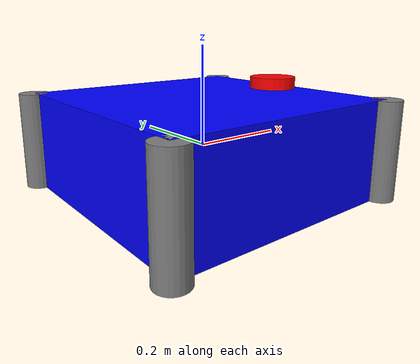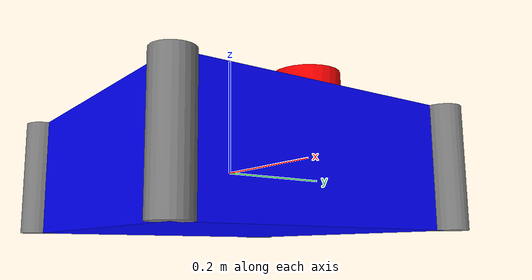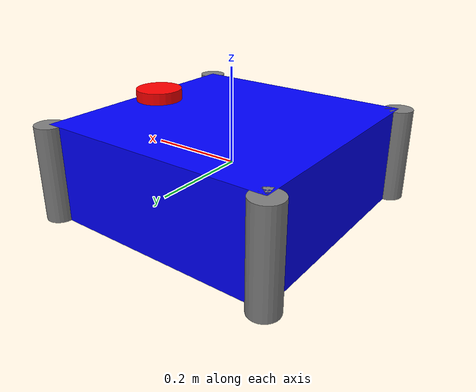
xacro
<?xml version="1.0"?>
<robot xmlns:xacro="http://www.ros.org/wiki/xacro" name="x500_lidar_2d">

  <!-- UAV BODY -->
  <link name="base_link">
    <visual>
      <geometry>
        <box size="0.5 0.5 0.2"/> <!-- UAV body box -->
      </geometry>
      <material name="blue">
        <color rgba="0 0 1 1"/>
      </material>
    </visual>
    <collision>
      <geometry>
        <box size="0.5 0.5 0.2"/>
      </geometry>
    </collision>
    <inertial>
      <mass value="1.0"/>
      <inertia ixx="0.02" ixy="0" ixz="0" iyy="0.02" iyz="0" izz="0.02"/>
      <origin xyz="0 0 0" rpy="0 0 0"/>
    </inertial>
  </link>

  <!-- LiDAR SENSOR -->
  <link name="lidar_link">
    <visual>
      <geometry>
        <cylinder radius="0.05" length="0.05"/>
      </geometry>
      <material name="red">
        <color rgba="1 0 0 1"/>
      </material>
    </visual>
    <collision>
      <geometry>
        <cylinder radius="0.05" length="0.05"/>
      </geometry>
    </collision>
  </link>

  <joint name="lidar_joint" type="fixed">
    <parent link="base_link"/>
    <child link="lidar_link"/>
    <!-- LiDAR mounted slightly forward and up -->
    <origin xyz="0.2 0 0.1" rpy="0 0 0"/>
  </joint>

  <!-- OPTIONAL: arms/propellers -->
  <link name="arm_front_left">
    <visual>
      <geometry>
        <cylinder radius="0.03" length="0.2"/>
      </geometry>
      <material name="gray">
        <color rgba="0.5 0.5 0.5 1"/>
      </material>
    </visual>
  </link>
  <joint name="arm_fl_joint" type="fixed">
    <parent link="base_link"/>
    <child link="arm_front_left"/>
    <origin xyz="0.25 0.25 0" rpy="0 0 0"/>
  </joint>
  <!-- Front Right Arm -->
<link name="arm_front_right">
  <visual>
    <geometry><cylinder radius="0.03" length="0.2"/></geometry>
    <material name="gray"><color rgba="0.5 0.5 0.5 1"/></material>
  </visual>
</link>
<joint name="arm_fr_joint" type="fixed">
  <parent link="base_link"/>
  <child link="arm_front_right"/>
  <origin xyz="0.25 -0.25 0" rpy="0 0 0"/>
</joint>

<!-- Back Left Arm -->
<link name="arm_back_left">
  <visual>
    <geometry><cylinder radius="0.03" length="0.2"/></geometry>
    <material name="gray"><color rgba="0.5 0.5 0.5 1"/></material>
  </visual>
</link>
<joint name="arm_bl_joint" type="fixed">
  <parent link="base_link"/>
  <child link="arm_back_left"/>
  <origin xyz="-0.25 0.25 0" rpy="0 0 0"/>
</joint>

<!-- Back Right Arm -->
<link name="arm_back_right">
  <visual>
    <geometry><cylinder radius="0.03" length="0.2"/></geometry>
    <material name="gray"><color rgba="0.5 0.5 0.5 1"/></material>
  </visual>
</link>
<joint name="arm_br_joint" type="fixed">
  <parent link="base_link"/>
  <child link="arm_back_right"/>
  <origin xyz="-0.25 -0.25 0" rpy="0 0 0"/>
</joint>
<link name="propeller_fl"/>
<joint name="propeller_fl_joint" type="fixed">
  <parent link="arm_front_left"/>
  <child link="propeller_fl"/>
  <origin xyz="0 0 0.05" rpy="0 0 0"/>
</joint>
<!-- Front Right Propeller -->
<link name="propeller_fr"/>
<joint name="propeller_fr_joint" type="fixed">
  <parent link="arm_front_right"/>
  <child link="propeller_fr"/>
  <origin xyz="0 0 0.05" rpy="0 0 0"/>
</joint>

<!-- Back Left Propeller -->
<link name="propeller_bl"/>
<joint name="propeller_bl_joint" type="fixed">
  <parent link="arm_back_left"/>
  <child link="propeller_bl"/>
  <origin xyz="0 0 0.05" rpy="0 0 0"/>
</joint>

<!-- Back Right Propeller -->
<link name="propeller_br"/>
<joint name="propeller_br_joint" type="fixed">
  <parent link="arm_back_right"/>
  <child link="propeller_br"/>
  <origin xyz="0 0 0.05" rpy="0 0 0"/>
</joint>

</robot>
